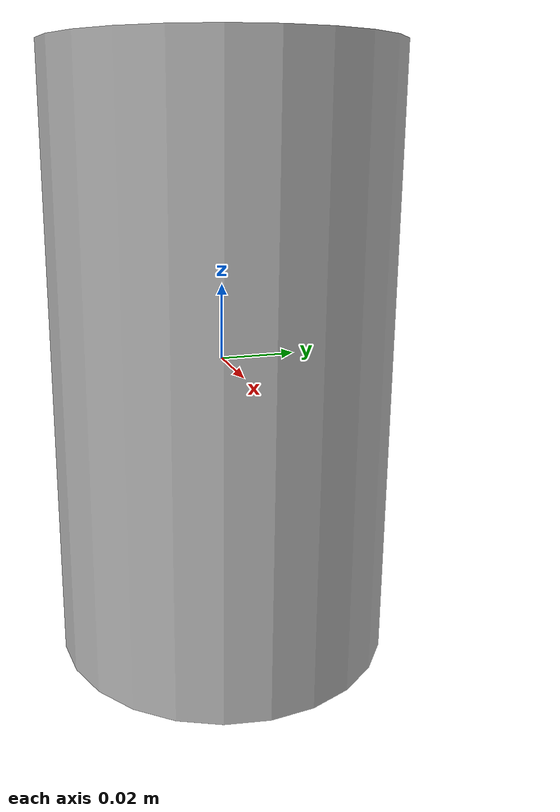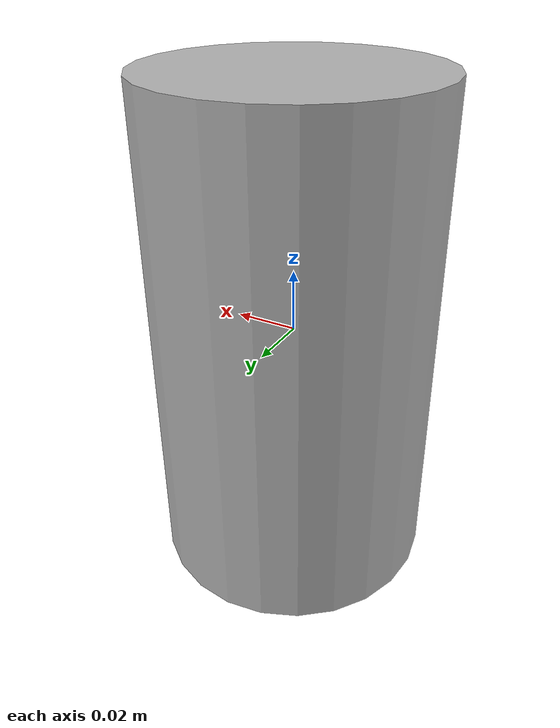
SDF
<?xml version="1.0"?>
<!-- Componente "cilindro" de la biblioteca del contrato 2.0. Origen = centro geométrico. -->
<sdf version="1.9"><model name='cilindro'><static>true</static><link name='link'><collision name='c'><geometry><cylinder><radius>0.0451</radius><length>0.16</length></cylinder></geometry></collision><visual name='v'><geometry><cylinder><radius>0.0451</radius><length>0.16</length></cylinder></geometry><material><ambient>0.7 0.7 0.7 1</ambient><diffuse>0.7 0.7 0.7 1</diffuse></material></visual></link></model></sdf>
